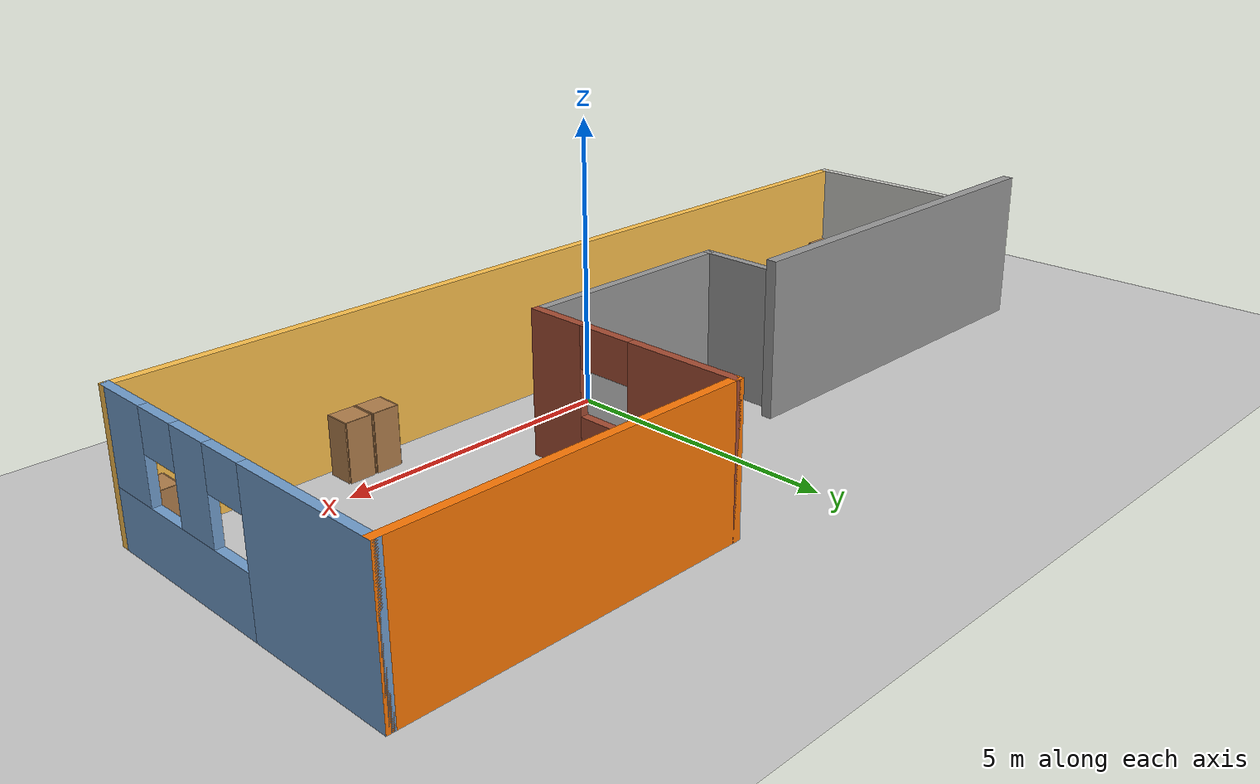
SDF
<sdf version="1.6">
 <world name="default">
  <light name="sun" type="directional">
   <pose>0 0 10 0 -0 0</pose>
   <diffuse>0.8 0.8 0.8 1</diffuse>
   <specular>0.2 0.2 0.2 1</specular>
   <attenuation>
    <range>1000</range>
    <constant>0.9</constant>
    <linear>0.01</linear>
    <quadratic>0.001</quadratic>
   </attenuation>
   <direction>-0.5 0.1 -0.9</direction>
  </light>
  <model name="ground_plane">
   <static>1</static>
   <link name="link">
    <collision name="collision">
     <geometry><plane><normal>0 0 1</normal><size>100 100</size></plane></geometry>
     <surface>
      <contact><collide_bitmask>65535</collide_bitmask></contact>
      <friction><ode><mu>100</mu><mu2>50</mu2></ode></friction>
     </surface>
    </collision>
    <visual name="visual">
     <cast_shadows>0</cast_shadows>
     <geometry><plane><normal>0 0 1</normal><size>100 100</size></plane></geometry>
     <material>
      <script><uri>file://media/materials/scripts/gazebo.material</uri><name>Gazebo/Grey</name></script>
     </material>
    </visual>
   </link>
  </model>
  <gravity>0 0 -9.8</gravity>
  <magnetic_field>6e-06 2.3e-05 -4.2e-05</magnetic_field>
  <atmosphere type="adiabatic"/>
  <physics name="default_physics" default="0" type="ode">
   <max_step_size>0.001</max_step_size>
   <real_time_factor>1</real_time_factor>
   <real_time_update_rate>1000</real_time_update_rate>
  </physics>
  <scene><ambient>0.4 0.4 0.4 1</ambient><background>0.7 0.7 0.7 1</background><shadows>1</shadows></scene>
  <audio><device>default</device></audio>
  <spherical_coordinates>
   <surface_model>EARTH_WGS84</surface_model>
   <latitude_deg>0</latitude_deg>
   <longitude_deg>0</longitude_deg>
   <elevation>0</elevation>
   <heading_deg>0</heading_deg>
  </spherical_coordinates>
  <model name="version-2">
   <pose>0 2 0 0 -0 0</pose>
   <link name="Wall_0">
    <collision name="Wall_0_Collision">
     <geometry><box><size>4.15 0.15 2.5</size></box></geometry>
     <pose>0 0 1.25 0 -0 0</pose>
    </collision>
    <visual name="Wall_0_Visual">
     <pose>0 0 1.25 0 -0 0</pose>
     <geometry><box><size>4.15 0.15 2.5</size></box></geometry>
     <material>
      <script><uri>file://media/materials/scripts/gazebo.material</uri><name>Gazebo/Grey</name></script>
      <ambient>1 1 1 1</ambient>
     </material>
     <meta><layer>0</layer></meta>
    </visual>
    <pose>-0 -1 0 0 -0 0</pose>
   </link>
   <link name="Wall_1">
    <pose>2 1 0 0 -0 1.5708</pose>
    <visual name="Wall_1_Visual_0">
     <pose>-1.5375 0 1.25 0 -0 0</pose>
     <geometry><box><size>1.075 0.15 2.5</size></box></geometry>
     <material>
      <script><uri>file://media/materials/scripts/gazebo.material</uri><name>Gazebo/Bricks</name></script>
      <ambient>1 1 1 1</ambient>
     </material>
     <meta><layer>0</layer></meta>
    </visual>
    <collision name="Wall_1_Collision_0">
     <geometry><box><size>1.075 0.15 2.5</size></box></geometry>
     <pose>-1.5375 0 1.25 0 -0 0</pose>
    </collision>
    <visual name="Wall_1_Visual_1">
     <pose>0.5375 0 0.5 0 -0 0</pose>
     <geometry><box><size>3.075 0.15 1</size></box></geometry>
     <material>
      <script><uri>file://media/materials/scripts/gazebo.material</uri><name>Gazebo/Bricks</name></script>
      <ambient>1 1 1 1</ambient>
     </material>
     <meta><layer>0</layer></meta>
    </visual>
    <collision name="Wall_1_Collision_1">
     <geometry><box><size>3.075 0.15 1</size></box></geometry>
     <pose>0.5375 0 0.5 0 -0 0</pose>
    </collision>
    <visual name="Wall_1_Visual_2">
     <pose>1.0375 0 1.75 0 -0 0</pose>
     <geometry><box><size>2.075 0.15 1.5</size></box></geometry>
     <material>
      <script><uri>file://media/materials/scripts/gazebo.material</uri><name>Gazebo/Bricks</name></script>
      <ambient>1 1 1 1</ambient>
     </material>
     <meta><layer>0</layer></meta>
    </visual>
    <collision name="Wall_1_Collision_2">
     <geometry><box><size>2.075 0.15 1.5</size></box></geometry>
     <pose>1.0375 0 1.75 0 -0 0</pose>
    </collision>
    <visual name="Wall_1_Visual_3">
     <pose>-0.5 0 2.15 0 -0 0</pose>
     <geometry><box><size>1 0.15 0.7</size></box></geometry>
     <material>
      <script><uri>file://media/materials/scripts/gazebo.material</uri><name>Gazebo/Bricks</name></script>
      <ambient>1 1 1 1</ambient>
     </material>
     <meta><layer>0</layer></meta>
    </visual>
    <collision name="Wall_1_Collision_3">
     <geometry><box><size>1 0.15 0.7</size></box></geometry>
     <pose>-0.5 0 2.15 0 -0 0</pose>
    </collision>
   </link>
   <link name="Wall_2">
    <collision name="Wall_2_Collision">
     <geometry><box><size>6.15 0.15 2.5</size></box></geometry>
     <pose>0 0 1.25 0 -0 0</pose>
    </collision>
    <visual name="Wall_2_Visual">
     <pose>0 0 1.25 0 -0 0</pose>
     <geometry><box><size>6.15 0.15 2.5</size></box></geometry>
     <material>
      <script><uri>file://media/materials/scripts/gazebo.material</uri><name>Gazebo/Grey</name></script>
      <ambient>0.996078 0.47451 0.0196078 1</ambient>
     </material>
     <meta><layer>0</layer></meta>
    </visual>
    <pose>5 3 0 0 -0 0</pose>
   </link>
   <link name="Wall_3">
    <pose>8 -0 0 0 -0 -1.5708</pose>
    <visual name="Wall_3_Visual_0">
     <pose>-1.7375 0 1.25 0 -0 0</pose>
     <geometry><box><size>2.675 0.15 2.5</size></box></geometry>
     <material>
      <script><uri>file://media/materials/scripts/gazebo.material</uri><name>Gazebo/Grey</name></script>
      <ambient>0.447059 0.623529 0.811765 1</ambient>
     </material>
     <meta><layer>0</layer></meta>
    </visual>
    <collision name="Wall_3_Collision_0">
     <geometry><box><size>2.675 0.15 2.5</size></box></geometry>
     <pose>-1.7375 0 1.25 0 -0 0</pose>
    </collision>
    <visual name="Wall_3_Visual_1">
     <pose>1.3375 0 0.5 0 -0 0</pose>
     <geometry><box><size>3.475 0.15 1</size></box></geometry>
     <material>
      <script><uri>file://media/materials/scripts/gazebo.material</uri><name>Gazebo/Grey</name></script>
      <ambient>0.447059 0.623529 0.811765 1</ambient>
     </material>
     <meta><layer>0</layer></meta>
    </visual>
    <collision name="Wall_3_Collision_1">
     <geometry><box><size>3.475 0.15 1</size></box></geometry>
     <pose>1.3375 0 0.5 0 -0 0</pose>
    </collision>
    <visual name="Wall_3_Visual_2">
     <pose>0.8 0 1.75 0 -0 0</pose>
     <geometry><box><size>0.8 0.15 1.5</size></box></geometry>
     <material>
      <script><uri>file://media/materials/scripts/gazebo.material</uri><name>Gazebo/Grey</name></script>
      <ambient>0.447059 0.623529 0.811765 1</ambient>
     </material>
     <meta><layer>0</layer></meta>
    </visual>
    <collision name="Wall_3_Collision_2">
     <geometry><box><size>0.8 0.15 1.5</size></box></geometry>
     <pose>0.8 0 1.75 0 -0 0</pose>
    </collision>
    <visual name="Wall_3_Visual_3">
     <pose>2.5375 0 1.75 0 -0 0</pose>
     <geometry><box><size>1.075 0.15 1.5</size></box></geometry>
     <material>
      <script><uri>file://media/materials/scripts/gazebo.material</uri><name>Gazebo/Grey</name></script>
      <ambient>0.447059 0.623529 0.811765 1</ambient>
     </material>
     <meta><layer>0</layer></meta>
    </visual>
    <collision name="Wall_3_Collision_3">
     <geometry><box><size>1.075 0.15 1.5</size></box></geometry>
     <pose>2.5375 0 1.75 0 -0 0</pose>
    </collision>
    <visual name="Wall_3_Visual_4">
     <pose>0 0 2.15 0 -0 0</pose>
     <geometry><box><size>0.8 0.15 0.7</size></box></geometry>
     <material>
      <script><uri>file://media/materials/scripts/gazebo.material</uri><name>Gazebo/Grey</name></script>
      <ambient>0.447059 0.623529 0.811765 1</ambient>
     </material>
     <meta><layer>0</layer></meta>
    </visual>
    <collision name="Wall_3_Collision_4">
     <geometry><box><size>0.8 0.15 0.7</size></box></geometry>
     <pose>0 0 2.15 0 -0 0</pose>
    </collision>
    <visual name="Wall_3_Visual_5">
     <pose>1.6 0 2.15 0 -0 0</pose>
     <geometry><box><size>0.8 0.15 0.7</size></box></geometry>
     <material>
      <script><uri>file://media/materials/scripts/gazebo.material</uri><name>Gazebo/Grey</name></script>
      <ambient>0.447059 0.623529 0.811765 1</ambient>
     </material>
     <meta><layer>0</layer></meta>
    </visual>
    <collision name="Wall_3_Collision_5">
     <geometry><box><size>0.8 0.15 0.7</size></box></geometry>
     <pose>1.6 0 2.15 0 -0 0</pose>
    </collision>
   </link>
   <link name="Wall_4">
    <collision name="Wall_4_Collision">
     <geometry><box><size>16.15 0.15 2.5</size></box></geometry>
     <pose>0 0 1.25 0 -0 0</pose>
    </collision>
    <visual name="Wall_4_Visual">
     <pose>0 0 1.25 0 -0 0</pose>
     <geometry><box><size>16.15 0.15 2.5</size></box></geometry>
     <material>
      <script><uri>file://media/materials/scripts/gazebo.material</uri><name>Gazebo/Grey</name></script>
      <ambient>1 0.764706 0.305882 1</ambient>
     </material>
     <meta><layer>0</layer></meta>
    </visual>
    <pose>-0 -3 0 0 -0 3.14159</pose>
   </link>
   <link name="Wall_5">
    <collision name="Wall_5_Collision">
     <geometry><box><size>3.65 0.15 2.5</size></box></geometry>
     <pose>0 0 1.25 0 -0 0</pose>
    </collision>
    <visual name="Wall_5_Visual">
     <pose>0 0 1.25 0 -0 0</pose>
     <geometry><box><size>3.65 0.15 2.5</size></box></geometry>
     <material>
      <script><uri>file://media/materials/scripts/gazebo.material</uri><name>Gazebo/CeilingTiled</name></script>
      <ambient>1 1 1 1</ambient>
     </material>
     <meta><layer>0</layer></meta>
    </visual>
    <pose>-8 -1.25 0 0 -0 1.5708</pose>
   </link>
   <link name="Wall_6">
    <pose>-5 0.5 0 0 -0 0</pose>
    <visual name="Wall_6_Visual_0">
     <pose>-2.91512 0 1.25 0 -0 0</pose>
     <geometry><box><size>0.319766 0.15 2.5</size></box></geometry>
     <material>
      <script><uri>file://media/materials/scripts/gazebo.material</uri><name>Gazebo/Wood</name></script>
      <ambient>1 1 1 1</ambient>
     </material>
     <meta><layer>0</layer></meta>
    </visual>
    <collision name="Wall_6_Collision_0">
     <geometry><box><size>0.319766 0.15 2.5</size></box></geometry>
     <pose>-2.91512 0 1.25 0 -0 0</pose>
    </collision>
    <visual name="Wall_6_Visual_1">
     <pose>0.909883 0 1.25 0 -0 0</pose>
     <geometry><box><size>4.33023 0.15 2.5</size></box></geometry>
     <material>
      <script><uri>file://media/materials/scripts/gazebo.material</uri><name>Gazebo/Wood</name></script>
      <ambient>1 1 1 1</ambient>
     </material>
     <meta><layer>0</layer></meta>
    </visual>
    <collision name="Wall_6_Collision_1">
     <geometry><box><size>4.33023 0.15 2.5</size></box></geometry>
     <pose>0.909883 0 1.25 0 -0 0</pose>
    </collision>
    <visual name="Wall_6_Visual_2">
     <pose>-2.00523 0 2.25 0 -0 0</pose>
     <geometry><box><size>1.5 0.15 0.5</size></box></geometry>
     <material>
      <script><uri>file://media/materials/scripts/gazebo.material</uri><name>Gazebo/Wood</name></script>
      <ambient>1 1 1 1</ambient>
     </material>
     <meta><layer>0</layer></meta>
    </visual>
    <collision name="Wall_6_Collision_2">
     <geometry><box><size>1.5 0.15 0.5</size></box></geometry>
     <pose>-2.00523 0 2.25 0 -0 0</pose>
    </collision>
   </link>
   <link name="Wall_7">
    <collision name="Wall_7_Collision">
     <geometry><box><size>1.65 0.15 2.5</size></box></geometry>
     <pose>0 0 1.25 0 -0 0</pose>
    </collision>
    <visual name="Wall_7_Visual">
     <pose>0 0 1.25 0 -0 0</pose>
     <geometry><box><size>1.65 0.15 2.5</size></box></geometry>
     <material>
      <script><uri>file://media/materials/scripts/gazebo.material</uri><name>Gazebo/Grey</name></script>
      <ambient>1 1 1 1</ambient>
     </material>
     <meta><layer>0</layer></meta>
    </visual>
    <pose>-2 -0.25 0 0 -0 -1.5708</pose>
   </link>
   <static>1</static>
  </model>
  <model name="cabinet">
   <static>1</static>
   <link name="cabinet_bottom_plate">
    <inertial>
     <pose>0 0 -1 0 -0 0</pose>
     <inertia><ixx>2.05</ixx><ixy>0</ixy><ixz>0</ixz><iyy>2.05</iyy><iyz>0</iyz><izz>2.05</izz></inertia>
     <mass>25</mass>
    </inertial>
    <collision name="cabinet_bottom_plate_geom">
     <pose>0 0 0.01 0 -0 0</pose>
     <geometry><box><size>0.45 0.45 0.02</size></box></geometry>
    </collision>
    <visual name="cabinet_bottom_plate_geom_visual">
     <pose>0 0 0.01 0 -0 0</pose>
     <geometry><box><size>0.45 0.45 0.02</size></box></geometry>
     <material>
      <script><uri>file://media/materials/scripts/gazebo.material</uri><name>Gazebo/Wood</name></script>
     </material>
    </visual>
    <collision name="cabinet_bottom_plate_geom_cabinet_back_plate">
     <pose>0.235 0 0.51 0 -0 0</pose>
     <geometry><box><size>0.02 0.45 1.02</size></box></geometry>
    </collision>
    <visual name="cabinet_bottom_plate_geom_cabinet_back_plate_visual">
     <pose>0.235 0 0.51 0 -0 0</pose>
     <geometry><box><size>0.02 0.45 1.02</size></box></geometry>
     <material>
      <script><uri>file://media/materials/scripts/gazebo.material</uri><name>Gazebo/Wood</name></script>
     </material>
    </visual>
    <collision name="cabinet_bottom_plate_geom_cabinet_left_plate">
     <pose>0 0.235 0.51 0 -0 0</pose>
     <geometry><box><size>0.45 0.02 1.02</size></box></geometry>
    </collision>
    <visual name="cabinet_bottom_plate_geom_cabinet_left_plate_visual">
     <pose>0 0.235 0.51 0 -0 0</pose>
     <geometry><box><size>0.45 0.02 1.02</size></box></geometry>
     <material>
      <script><uri>file://media/materials/scripts/gazebo.material</uri><name>Gazebo/Wood</name></script>
     </material>
    </visual>
    <collision name="cabinet_bottom_plate_geom_cabinet_middle_plate">
     <pose>0 0 0.51 0 -0 0</pose>
     <geometry><box><size>0.45 0.45 0.02</size></box></geometry>
    </collision>
    <visual name="cabinet_bottom_plate_geom_cabinet_middle_plate_visual">
     <pose>0 0 0.51 0 -0 0</pose>
     <geometry><box><size>0.45 0.45 0.02</size></box></geometry>
     <material>
      <script><uri>file://media/materials/scripts/gazebo.material</uri><name>Gazebo/Wood</name></script>
     </material>
    </visual>
    <collision name="cabinet_bottom_plate_geom_cabinet_right_plate">
     <pose>0 -0.235 0.51 0 -0 0</pose>
     <geometry><box><size>0.45 0.02 1.02</size></box></geometry>
    </collision>
    <visual name="cabinet_bottom_plate_geom_cabinet_right_plate_visual">
     <pose>0 -0.235 0.51 0 -0 0</pose>
     <geometry><box><size>0.45 0.02 1.02</size></box></geometry>
     <material>
      <script><uri>file://media/materials/scripts/gazebo.material</uri><name>Gazebo/Wood</name></script>
     </material>
    </visual>
    <collision name="cabinet_bottom_plate_geom_cabinet_top_plate">
     <pose>0 0 1.01 0 -0 0</pose>
     <geometry><box><size>0.45 0.45 0.02</size></box></geometry>
    </collision>
    <visual name="cabinet_bottom_plate_geom_cabinet_top_plate_visual">
     <pose>0 0 1.01 0 -0 0</pose>
     <geometry><box><size>0.45 0.45 0.02</size></box></geometry>
     <material>
      <script><uri>file://media/materials/scripts/gazebo.material</uri><name>Gazebo/Wood</name></script>
     </material>
    </visual>
   </link>
   <pose>4.5 -0.6 0 0 -0 1.5707</pose>
  </model>
  <model name="cabinet_0">
   <static>1</static>
   <link name="cabinet_bottom_plate">
    <inertial>
     <pose>0 0 -1 0 -0 0</pose>
     <inertia><ixx>2.05</ixx><ixy>0</ixy><ixz>0</ixz><iyy>2.05</iyy><iyz>0</iyz><izz>2.05</izz></inertia>
     <mass>25</mass>
    </inertial>
    <collision name="cabinet_bottom_plate_geom">
     <pose>0 0 0.01 0 -0 0</pose>
     <geometry><box><size>0.45 0.45 0.02</size></box></geometry>
    </collision>
    <visual name="cabinet_bottom_plate_geom_visual">
     <pose>0 0 0.01 0 -0 0</pose>
     <geometry><box><size>0.45 0.45 0.02</size></box></geometry>
     <material>
      <script><uri>file://media/materials/scripts/gazebo.material</uri><name>Gazebo/Wood</name></script>
     </material>
    </visual>
    <collision name="cabinet_bottom_plate_geom_cabinet_back_plate">
     <pose>0.235 0 0.51 0 -0 0</pose>
     <geometry><box><size>0.02 0.45 1.02</size></box></geometry>
    </collision>
    <visual name="cabinet_bottom_plate_geom_cabinet_back_plate_visual">
     <pose>0.235 0 0.51 0 -0 0</pose>
     <geometry><box><size>0.02 0.45 1.02</size></box></geometry>
     <material>
      <script><uri>file://media/materials/scripts/gazebo.material</uri><name>Gazebo/Wood</name></script>
     </material>
    </visual>
    <collision name="cabinet_bottom_plate_geom_cabinet_left_plate">
     <pose>0 0.235 0.51 0 -0 0</pose>
     <geometry><box><size>0.45 0.02 1.02</size></box></geometry>
    </collision>
    <visual name="cabinet_bottom_plate_geom_cabinet_left_plate_visual">
     <pose>0 0.235 0.51 0 -0 0</pose>
     <geometry><box><size>0.45 0.02 1.02</size></box></geometry>
     <material>
      <script><uri>file://media/materials/scripts/gazebo.material</uri><name>Gazebo/Wood</name></script>
     </material>
    </visual>
    <collision name="cabinet_bottom_plate_geom_cabinet_middle_plate">
     <pose>0 0 0.51 0 -0 0</pose>
     <geometry><box><size>0.45 0.45 0.02</size></box></geometry>
    </collision>
    <visual name="cabinet_bottom_plate_geom_cabinet_middle_plate_visual">
     <pose>0 0 0.51 0 -0 0</pose>
     <geometry><box><size>0.45 0.45 0.02</size></box></geometry>
     <material>
      <script><uri>file://media/materials/scripts/gazebo.material</uri><name>Gazebo/Wood</name></script>
     </material>
    </visual>
    <collision name="cabinet_bottom_plate_geom_cabinet_right_plate">
     <pose>0 -0.235 0.51 0 -0 0</pose>
     <geometry><box><size>0.45 0.02 1.02</size></box></geometry>
    </collision>
    <visual name="cabinet_bottom_plate_geom_cabinet_right_plate_visual">
     <pose>0 -0.235 0.51 0 -0 0</pose>
     <geometry><box><size>0.45 0.02 1.02</size></box></geometry>
     <material>
      <script><uri>file://media/materials/scripts/gazebo.material</uri><name>Gazebo/Wood</name></script>
     </material>
    </visual>
    <collision name="cabinet_bottom_plate_geom_cabinet_top_plate">
     <pose>0 0 1.01 0 -0 0</pose>
     <geometry><box><size>0.45 0.45 0.02</size></box></geometry>
    </collision>
    <visual name="cabinet_bottom_plate_geom_cabinet_top_plate_visual">
     <pose>0 0 1.01 0 -0 0</pose>
     <geometry><box><size>0.45 0.45 0.02</size></box></geometry>
     <material>
      <script><uri>file://media/materials/scripts/gazebo.material</uri><name>Gazebo/Wood</name></script>
     </material>
    </visual>
   </link>
   <pose>4 -0.6 0 0 -0 1.5707</pose>
  </model>
  <model name="cabinet_1">
   <static>1</static>
   <link name="cabinet_bottom_plate">
    <inertial>
     <pose>0 0 -1 0 -0 0</pose>
     <inertia><ixx>2.05</ixx><ixy>0</ixy><ixz>0</ixz><iyy>2.05</iyy><iyz>0</iyz><izz>2.05</izz></inertia>
     <mass>25</mass>
    </inertial>
    <collision name="cabinet_bottom_plate_geom">
     <pose>0 0 0.01 0 -0 0</pose>
     <geometry><box><size>0.45 0.45 0.02</size></box></geometry>
    </collision>
    <visual name="cabinet_bottom_plate_geom_visual">
     <pose>0 0 0.01 0 -0 0</pose>
     <geometry><box><size>0.45 0.45 0.02</size></box></geometry>
     <material>
      <script><uri>file://media/materials/scripts/gazebo.material</uri><name>Gazebo/Wood</name></script>
     </material>
    </visual>
    <collision name="cabinet_bottom_plate_geom_cabinet_back_plate">
     <pose>0.235 0 0.51 0 -0 0</pose>
     <geometry><box><size>0.02 0.45 1.02</size></box></geometry>
    </collision>
    <visual name="cabinet_bottom_plate_geom_cabinet_back_plate_visual">
     <pose>0.235 0 0.51 0 -0 0</pose>
     <geometry><box><size>0.02 0.45 1.02</size></box></geometry>
     <material>
      <script><uri>file://media/materials/scripts/gazebo.material</uri><name>Gazebo/Wood</name></script>
     </material>
    </visual>
    <collision name="cabinet_bottom_plate_geom_cabinet_left_plate">
     <pose>0 0.235 0.51 0 -0 0</pose>
     <geometry><box><size>0.45 0.02 1.02</size></box></geometry>
    </collision>
    <visual name="cabinet_bottom_plate_geom_cabinet_left_plate_visual">
     <pose>0 0.235 0.51 0 -0 0</pose>
     <geometry><box><size>0.45 0.02 1.02</size></box></geometry>
     <material>
      <script><uri>file://media/materials/scripts/gazebo.material</uri><name>Gazebo/Wood</name></script>
     </material>
    </visual>
    <collision name="cabinet_bottom_plate_geom_cabinet_middle_plate">
     <pose>0 0 0.51 0 -0 0</pose>
     <geometry><box><size>0.45 0.45 0.02</size></box></geometry>
    </collision>
    <visual name="cabinet_bottom_plate_geom_cabinet_middle_plate_visual">
     <pose>0 0 0.51 0 -0 0</pose>
     <geometry><box><size>0.45 0.45 0.02</size></box></geometry>
     <material>
      <script><uri>file://media/materials/scripts/gazebo.material</uri><name>Gazebo/Wood</name></script>
     </material>
    </visual>
    <collision name="cabinet_bottom_plate_geom_cabinet_right_plate">
     <pose>0 -0.235 0.51 0 -0 0</pose>
     <geometry><box><size>0.45 0.02 1.02</size></box></geometry>
    </collision>
    <visual name="cabinet_bottom_plate_geom_cabinet_right_plate_visual">
     <pose>0 -0.235 0.51 0 -0 0</pose>
     <geometry><box><size>0.45 0.02 1.02</size></box></geometry>
     <material>
      <script><uri>file://media/materials/scripts/gazebo.material</uri><name>Gazebo/Wood</name></script>
     </material>
    </visual>
    <collision name="cabinet_bottom_plate_geom_cabinet_top_plate">
     <pose>0 0 1.01 0 -0 0</pose>
     <geometry><box><size>0.45 0.45 0.02</size></box></geometry>
    </collision>
    <visual name="cabinet_bottom_plate_geom_cabinet_top_plate_visual">
     <pose>0 0 1.01 0 -0 0</pose>
     <geometry><box><size>0.45 0.45 0.02</size></box></geometry>
     <material>
      <script><uri>file://media/materials/scripts/gazebo.material</uri><name>Gazebo/Wood</name></script>
     </material>
    </visual>
   </link>
   <pose>-7.7 -0.7 0 0 -0 0</pose>
  </model>
  <model name="cabinet_2">
   <static>1</static>
   <link name="cabinet_bottom_plate">
    <inertial>
     <pose>0 0 -1 0 -0 0</pose>
     <inertia><ixx>2.05</ixx><ixy>0</ixy><ixz>0</ixz><iyy>2.05</iyy><iyz>0</iyz><izz>2.05</izz></inertia>
     <mass>25</mass>
    </inertial>
    <collision name="cabinet_bottom_plate_geom">
     <pose>0 0 0.01 0 -0 0</pose>
     <geometry><box><size>0.45 0.45 0.02</size></box></geometry>
    </collision>
    <visual name="cabinet_bottom_plate_geom_visual">
     <pose>0 0 0.01 0 -0 0</pose>
     <geometry><box><size>0.45 0.45 0.02</size></box></geometry>
     <material>
      <script><uri>file://media/materials/scripts/gazebo.material</uri><name>Gazebo/Wood</name></script>
     </material>
    </visual>
    <collision name="cabinet_bottom_plate_geom_cabinet_back_plate">
     <pose>0.235 0 0.51 0 -0 0</pose>
     <geometry><box><size>0.02 0.45 1.02</size></box></geometry>
    </collision>
    <visual name="cabinet_bottom_plate_geom_cabinet_back_plate_visual">
     <pose>0.235 0 0.51 0 -0 0</pose>
     <geometry><box><size>0.02 0.45 1.02</size></box></geometry>
     <material>
      <script><uri>file://media/materials/scripts/gazebo.material</uri><name>Gazebo/Wood</name></script>
     </material>
    </visual>
    <collision name="cabinet_bottom_plate_geom_cabinet_left_plate">
     <pose>0 0.235 0.51 0 -0 0</pose>
     <geometry><box><size>0.45 0.02 1.02</size></box></geometry>
    </collision>
    <visual name="cabinet_bottom_plate_geom_cabinet_left_plate_visual">
     <pose>0 0.235 0.51 0 -0 0</pose>
     <geometry><box><size>0.45 0.02 1.02</size></box></geometry>
     <material>
      <script><uri>file://media/materials/scripts/gazebo.material</uri><name>Gazebo/Wood</name></script>
     </material>
    </visual>
    <collision name="cabinet_bottom_plate_geom_cabinet_middle_plate">
     <pose>0 0 0.51 0 -0 0</pose>
     <geometry><box><size>0.45 0.45 0.02</size></box></geometry>
    </collision>
    <visual name="cabinet_bottom_plate_geom_cabinet_middle_plate_visual">
     <pose>0 0 0.51 0 -0 0</pose>
     <geometry><box><size>0.45 0.45 0.02</size></box></geometry>
     <material>
      <script><uri>file://media/materials/scripts/gazebo.material</uri><name>Gazebo/Wood</name></script>
     </material>
    </visual>
    <collision name="cabinet_bottom_plate_geom_cabinet_right_plate">
     <pose>0 -0.235 0.51 0 -0 0</pose>
     <geometry><box><size>0.45 0.02 1.02</size></box></geometry>
    </collision>
    <visual name="cabinet_bottom_plate_geom_cabinet_right_plate_visual">
     <pose>0 -0.235 0.51 0 -0 0</pose>
     <geometry><box><size>0.45 0.02 1.02</size></box></geometry>
     <material>
      <script><uri>file://media/materials/scripts/gazebo.material</uri><name>Gazebo/Wood</name></script>
     </material>
    </visual>
    <collision name="cabinet_bottom_plate_geom_cabinet_top_plate">
     <pose>0 0 1.01 0 -0 0</pose>
     <geometry><box><size>0.45 0.45 0.02</size></box></geometry>
    </collision>
    <visual name="cabinet_bottom_plate_geom_cabinet_top_plate_visual">
     <pose>0 0 1.01 0 -0 0</pose>
     <geometry><box><size>0.45 0.45 0.02</size></box></geometry>
     <material>
      <script><uri>file://media/materials/scripts/gazebo.material</uri><name>Gazebo/Wood</name></script>
     </material>
    </visual>
   </link>
   <pose>-2.35 1.2 0 0 -0 0</pose>
  </model>
  <model name="cabinet_3">
   <static>1</static>
   <link name="cabinet_bottom_plate">
    <inertial>
     <pose>0 0 -1 0 -0 0</pose>
     <inertia><ixx>2.05</ixx><ixy>0</ixy><ixz>0</ixz><iyy>2.05</iyy><iyz>0</iyz><izz>2.05</izz></inertia>
     <mass>25</mass>
    </inertial>
    <collision name="cabinet_bottom_plate_geom">
     <pose>0 0 0.01 0 -0 0</pose>
     <geometry><box><size>0.45 0.45 0.02</size></box></geometry>
    </collision>
    <visual name="cabinet_bottom_plate_geom_visual">
     <pose>0 0 0.01 0 -0 0</pose>
     <geometry><box><size>0.45 0.45 0.02</size></box></geometry>
     <material>
      <script><uri>file://media/materials/scripts/gazebo.material</uri><name>Gazebo/Wood</name></script>
     </material>
    </visual>
    <collision name="cabinet_bottom_plate_geom_cabinet_back_plate">
     <pose>0.235 0 0.51 0 -0 0</pose>
     <geometry><box><size>0.02 0.45 1.02</size></box></geometry>
    </collision>
    <visual name="cabinet_bottom_plate_geom_cabinet_back_plate_visual">
     <pose>0.235 0 0.51 0 -0 0</pose>
     <geometry><box><size>0.02 0.45 1.02</size></box></geometry>
     <material>
      <script><uri>file://media/materials/scripts/gazebo.material</uri><name>Gazebo/Wood</name></script>
     </material>
    </visual>
    <collision name="cabinet_bottom_plate_geom_cabinet_left_plate">
     <pose>0 0.235 0.51 0 -0 0</pose>
     <geometry><box><size>0.45 0.02 1.02</size></box></geometry>
    </collision>
    <visual name="cabinet_bottom_plate_geom_cabinet_left_plate_visual">
     <pose>0 0.235 0.51 0 -0 0</pose>
     <geometry><box><size>0.45 0.02 1.02</size></box></geometry>
     <material>
      <script><uri>file://media/materials/scripts/gazebo.material</uri><name>Gazebo/Wood</name></script>
     </material>
    </visual>
    <collision name="cabinet_bottom_plate_geom_cabinet_middle_plate">
     <pose>0 0 0.51 0 -0 0</pose>
     <geometry><box><size>0.45 0.45 0.02</size></box></geometry>
    </collision>
    <visual name="cabinet_bottom_plate_geom_cabinet_middle_plate_visual">
     <pose>0 0 0.51 0 -0 0</pose>
     <geometry><box><size>0.45 0.45 0.02</size></box></geometry>
     <material>
      <script><uri>file://media/materials/scripts/gazebo.material</uri><name>Gazebo/Wood</name></script>
     </material>
    </visual>
    <collision name="cabinet_bottom_plate_geom_cabinet_right_plate">
     <pose>0 -0.235 0.51 0 -0 0</pose>
     <geometry><box><size>0.45 0.02 1.02</size></box></geometry>
    </collision>
    <visual name="cabinet_bottom_plate_geom_cabinet_right_plate_visual">
     <pose>0 -0.235 0.51 0 -0 0</pose>
     <geometry><box><size>0.45 0.02 1.02</size></box></geometry>
     <material>
      <script><uri>file://media/materials/scripts/gazebo.material</uri><name>Gazebo/Wood</name></script>
     </material>
    </visual>
    <collision name="cabinet_bottom_plate_geom_cabinet_top_plate">
     <pose>0 0 1.01 0 -0 0</pose>
     <geometry><box><size>0.45 0.45 0.02</size></box></geometry>
    </collision>
    <visual name="cabinet_bottom_plate_geom_cabinet_top_plate_visual">
     <pose>0 0 1.01 0 -0 0</pose>
     <geometry><box><size>0.45 0.45 0.02</size></box></geometry>
     <material>
      <script><uri>file://media/materials/scripts/gazebo.material</uri><name>Gazebo/Wood</name></script>
     </material>
    </visual>
   </link>
   <pose>7.7 -0.6 0 0 -0 3.14159</pose>
  </model>
  <model name="cabinet_4">
   <static>1</static>
   <link name="cabinet_bottom_plate">
    <inertial>
     <pose>0 0 -1 0 -0 0</pose>
     <inertia><ixx>2.05</ixx><ixy>0</ixy><ixz>0</ixz><iyy>2.05</iyy><iyz>0</iyz><izz>2.05</izz></inertia>
     <mass>25</mass>
    </inertial>
    <collision name="cabinet_bottom_plate_geom">
     <pose>0 0 0.01 0 -0 0</pose>
     <geometry><box><size>0.45 0.45 0.02</size></box></geometry>
    </collision>
    <visual name="cabinet_bottom_plate_geom_visual">
     <pose>0 0 0.01 0 -0 0</pose>
     <geometry><box><size>0.45 0.45 0.02</size></box></geometry>
     <material>
      <script><uri>file://media/materials/scripts/gazebo.material</uri><name>Gazebo/Wood</name></script>
     </material>
    </visual>
    <collision name="cabinet_bottom_plate_geom_cabinet_back_plate">
     <pose>0.235 0 0.51 0 -0 0</pose>
     <geometry><box><size>0.02 0.45 1.02</size></box></geometry>
    </collision>
    <visual name="cabinet_bottom_plate_geom_cabinet_back_plate_visual">
     <pose>0.235 0 0.51 0 -0 0</pose>
     <geometry><box><size>0.02 0.45 1.02</size></box></geometry>
     <material>
      <script><uri>file://media/materials/scripts/gazebo.material</uri><name>Gazebo/Wood</name></script>
     </material>
    </visual>
    <collision name="cabinet_bottom_plate_geom_cabinet_left_plate">
     <pose>0 0.235 0.51 0 -0 0</pose>
     <geometry><box><size>0.45 0.02 1.02</size></box></geometry>
    </collision>
    <visual name="cabinet_bottom_plate_geom_cabinet_left_plate_visual">
     <pose>0 0.235 0.51 0 -0 0</pose>
     <geometry><box><size>0.45 0.02 1.02</size></box></geometry>
     <material>
      <script><uri>file://media/materials/scripts/gazebo.material</uri><name>Gazebo/Wood</name></script>
     </material>
    </visual>
    <collision name="cabinet_bottom_plate_geom_cabinet_middle_plate">
     <pose>0 0 0.51 0 -0 0</pose>
     <geometry><box><size>0.45 0.45 0.02</size></box></geometry>
    </collision>
    <visual name="cabinet_bottom_plate_geom_cabinet_middle_plate_visual">
     <pose>0 0 0.51 0 -0 0</pose>
     <geometry><box><size>0.45 0.45 0.02</size></box></geometry>
     <material>
      <script><uri>file://media/materials/scripts/gazebo.material</uri><name>Gazebo/Wood</name></script>
     </material>
    </visual>
    <collision name="cabinet_bottom_plate_geom_cabinet_right_plate">
     <pose>0 -0.235 0.51 0 -0 0</pose>
     <geometry><box><size>0.45 0.02 1.02</size></box></geometry>
    </collision>
    <visual name="cabinet_bottom_plate_geom_cabinet_right_plate_visual">
     <pose>0 -0.235 0.51 0 -0 0</pose>
     <geometry><box><size>0.45 0.02 1.02</size></box></geometry>
     <material>
      <script><uri>file://media/materials/scripts/gazebo.material</uri><name>Gazebo/Wood</name></script>
     </material>
    </visual>
    <collision name="cabinet_bottom_plate_geom_cabinet_top_plate">
     <pose>0 0 1.01 0 -0 0</pose>
     <geometry><box><size>0.45 0.45 0.02</size></box></geometry>
    </collision>
    <visual name="cabinet_bottom_plate_geom_cabinet_top_plate_visual">
     <pose>0 0 1.01 0 -0 0</pose>
     <geometry><box><size>0.45 0.45 0.02</size></box></geometry>
     <material>
      <script><uri>file://media/materials/scripts/gazebo.material</uri><name>Gazebo/Wood</name></script>
     </material>
    </visual>
   </link>
   <pose>7.7 4.68352 0 0 0 -1.5707</pose>
  </model>
  <model name="grey_wall">
   <static>1</static>
   <link name="link">
    <pose>0 0 1.4 0 -0 0</pose>
    <collision name="collision"><geometry><box><size>7.5 0.2 2.8</size></box></geometry></collision>
    <visual name="visual">
     <cast_shadows>0</cast_shadows>
     <geometry><box><size>7.5 0.2 2.8</size></box></geometry>
     <material>
      <script>
       <uri>model://grey_wall/materials/scripts</uri>
       <uri>model://grey_wall/materials/textures</uri>
       <name>vrc/grey_wall</name>
      </script>
     </material>
    </visual>
   </link>
   <pose>-5.36445 2.6792 0 0 -0 0</pose>
  </model>
 </world>
</sdf>
